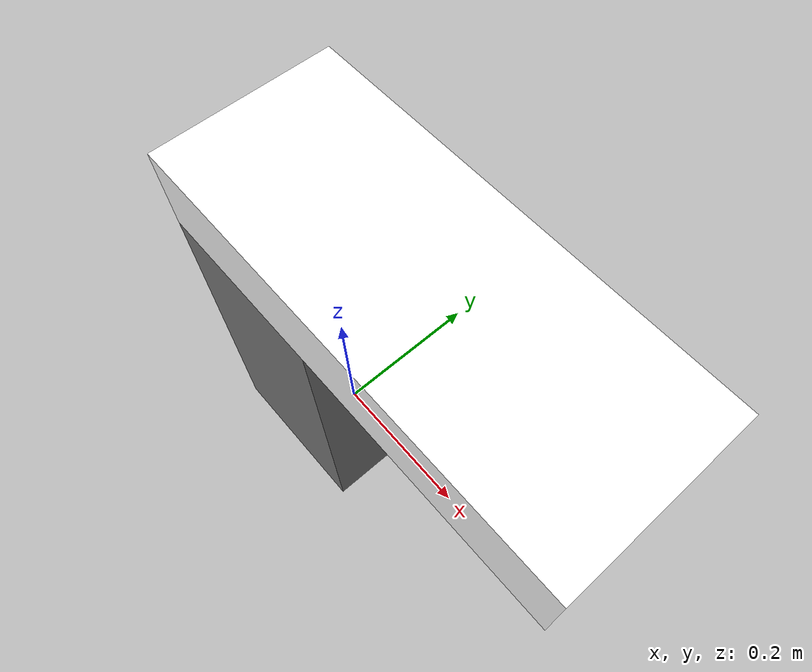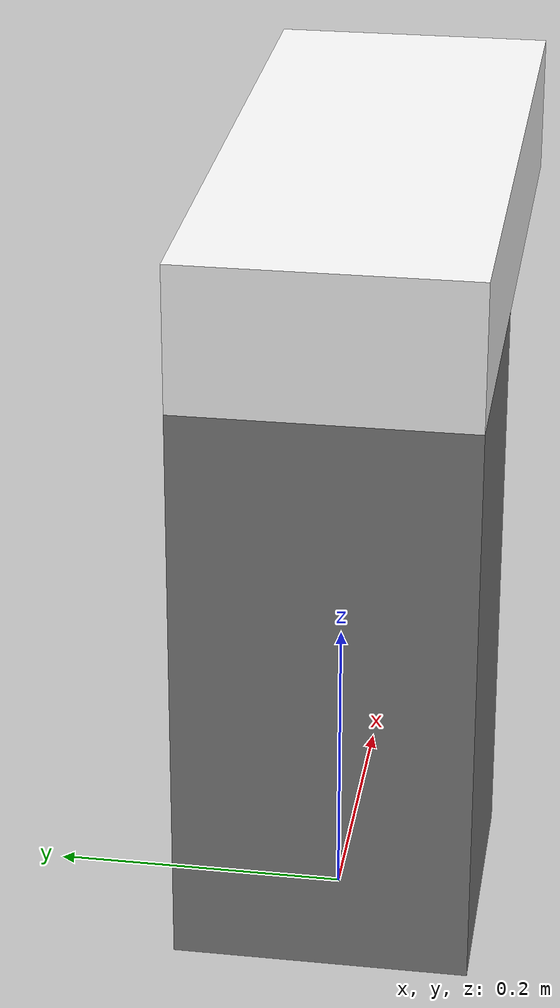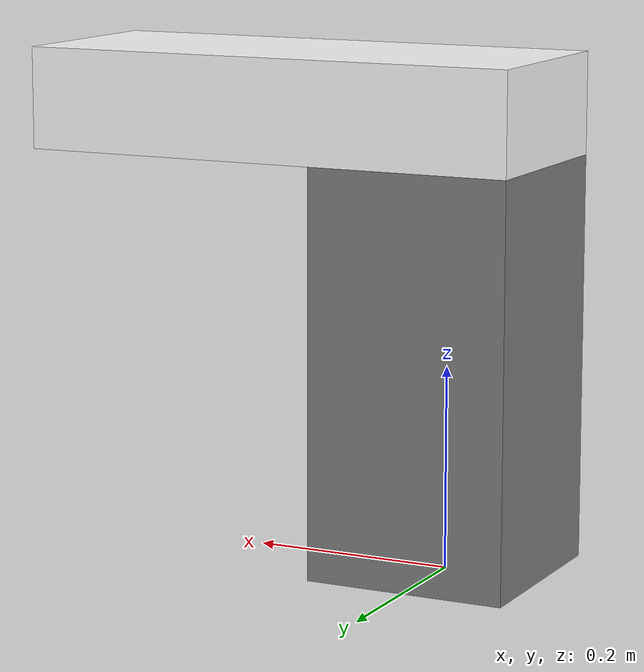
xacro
<?xml version="1.0"?>

<robot xmlns:xacro="http://www.ros.org/wiki/xacro" name="one_dof_robot">

  <!-- Includes de Gazebo y ROS2 Control -->
  <xacro:include filename="$(find lab5_ros2control_gazebo_classic)/models/one_dof/one_dof.gazebo.xacro" />
  <xacro:include filename="$(find lab5_ros2control_gazebo_classic)/models/one_dof/one_dof.ros2control.xacro" />

  <xacro:property name="M_PI" value="3.14159274"/>

  <!-- Macro de inercia para prismas rectangulares -->
  <xacro:macro name="box_inertia" params="m w h d">
    <inertial>
      <origin xyz="0 0 0" rpy="0 0 0"/>
      <mass value="${m}"/>
      <inertia
        ixx="${(m/12) * (h*h + d*d)}"
        ixy="0.0"
        ixz="0.0"
        iyy="${(m/12) * (w*w + d*d)}"
        iyz="0.0"
        izz="${(m/12) * (w*w + h*h)}"/>
    </inertial>
  </xacro:macro>

  <!-- Materiales -->
  <material name="gray">
    <color rgba="0.5 0.5 0.5 1.0"/>
  </material>
  <material name="white">
    <color rgba="1.0 1.0 1.0 1.0"/>
  </material>

  <!-- Huella en el suelo -->
  <link name="base_footprint"/>
  <joint name="base_footprint_fixed" type="fixed">
    <parent link="base_footprint"/>
    <child link="base_link"/>
    <origin xyz="0 0 0" rpy="0 0 0"/>
  </joint>

  <!-- Base link -->
  <link name="base_link">
    <visual>
      <origin xyz="0 0 0.2" rpy="0 0 0"/>
      <geometry>
        <box size="0.2 0.2 0.4"/>
      </geometry>
      <material name="gray"/>
    </visual>
    <collision>
      <origin xyz="0 0 0.2" rpy="0 0 0"/>
      <geometry>
        <box size="0.2 0.2 0.4"/>
      </geometry>
    </collision>
    <xacro:box_inertia m="5.0" w="0.2" h="0.2" d="0.4"/>
  </link>

  <!-- Junta revolución rotando sobre Z -->
  <joint name="base_to_moving" type="revolute">
    <parent link="base_link"/>
    <child link="moving_link"/>
    <origin xyz="0 0 0.45" rpy="0 0 0"/>
    <axis xyz="0 0 1"/>
    <limit lower="-${M_PI}" upper="${M_PI}" effort="10.0" velocity="2.0"/>
    <dynamics damping="0.1" friction="0.1"/>
  </joint>

  <!-- Moving link  -->
  <link name="moving_link">
    <visual>
      <origin xyz="0.15 0 0" rpy="0 0 0"/>
      <geometry>
        <box size="0.5 0.2 0.1"/>
      </geometry>
      <material name="white"/>
    </visual>
    <collision>
      <origin xyz="0.15 0 0" rpy="0 0 0"/>
      <geometry>
        <box size="0.5 0.2 0.1"/>
      </geometry>
    </collision>
    <xacro:box_inertia m="0.3" w="0.5" h="0.2" d="0.1"/>
  </link>

  <!-- =============== Gazebo y ROS2 Control =============== -->
  <xacro:robot_gazebo/>
  <xacro:robot_ros2control/>

</robot>
